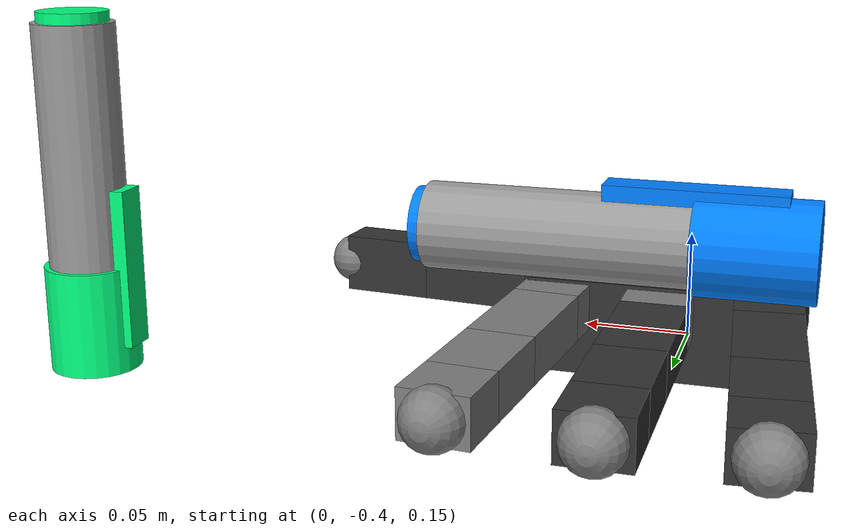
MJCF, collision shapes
<mujoco model="allegro_hand_right">
  <compiler angle="radian"/>
  <option apirate="200" iterations="20" noslip_iterations="20" cone="elliptic"/>
  <size njmax="2000" nconmax="500" nstack="600000" nuser_body="9" nuser_jnt="1" nuser_site="1" nuser_tendon="1"
        nuser_actuator="16" nuser_sensor="1"/>
  <default class="main">
    <default class="collision">
      <geom conaffinity="0" group="4" friction="1 0.5 0.01" margin="0.0005" condim="4"/>
    </default>
    <default class="visual">
      <geom type="mesh" contype="0" conaffinity="0" group="1" material="MatViz" friction="1 0.5 0.01"
            margin="0.0005"/>
    </default>
  </default>
  <asset>
    <material name="MatViz" specular="0.75" shininess="0.1" reflectance="0.5" rgba="0.2 0.2 0.2 1"/>
    <mesh file="meshes/base_link.STL" name="base_link" scale="1 1 1"/>
    <mesh file="meshes/link_0.0.STL" name="link0" scale="1 1 1"/>
    <mesh file="meshes/link_1.0.STL" name="link1" scale="1 1 1"/>
    <mesh file="meshes/link_2.0.STL" name="link2" scale="1 1 1"/>
    <mesh file="meshes/link_3.0.STL" name="link3" scale="1 1 1"/>
    <mesh file="meshes/link_13.0.STL" name="link13" scale="1 1 1"/>
    <mesh file="meshes/link_14.0.STL" name="link14" scale="1 1 1"/>
    <mesh file="meshes/link_15.0.STL" name="link15" scale="1 1 1"/>
    <mesh file="meshes/link_12.0_right.STL" name="link12_right" scale="1 1 1"/>
    <mesh file="meshes/link_3.0_tip.STL" name="link3_tip" scale="1 1 1"/>
    <mesh file="meshes/link_15.0_tip.STL" name="link15_tip" scale="1 1 1"/>
  </asset>
  <worldbody>
    <body name="forearm" pos="0 -0.7 0.2" quat="0.5 -0.5 0.5 0.5">
      <inertial pos="0.001 -0.002 0.29" quat="0.982037 -0.0160006 0 -0.188007" mass="4" diaginertia="0.01 0.01 0.0075"/>
      <site name="S_grasp" pos="0 0 0" type="sphere" size="0.01" rgba="0 0 0 0"/>
      <body name="base_link" pos="0.0098 0.0 0.395" quat="0 0 0 1">
        <joint name="ARRx" pos="0 0 0" axis="1 0 0" range="-0.75 0.75" damping="20" limited="true" margin="0.01"
               armature="0.001" frictionloss="0.001"/>
        <joint name="ARRy" pos="0 0 0" axis="0 1 0" range="-0.75 0.75" damping="20" limited="true" margin="0.01"
               armature="0.001" frictionloss="0.001"/>
        <geom class="collision" size="0.0204 0.0565 0.0475" pos="-0.0093 0 -0.0475" type="box" rgba="0.2 0.2 0.2 1"/>
        <geom class="visual" mesh="base_link" rgba="0.2 0.2 0.2 1"/>
        <body name="link_0.0" pos="0 0.0435 -0.001542" quat="0.999048 -0.0436194 0 0">
          <inertial pos="0 0 0.0082" mass="0.0088396" diaginertia="7.55204e-07 4.8111e-07 8.40064e-07"/>
          <joint name="joint_0.0" pos="0 0 0" axis="0 0 1" limited="true" range="-0.47 0.47" margin="0.01"
                 armature="0.001" damping="0.05" frictionloss="0.001"/>
          <geom class="collision" size="0.0098 0.01375 0.0082" pos="0 0 0.0082" type="box"/>
          <geom class="visual" mesh="link0" rgba="0.2 0.2 0.2 1"/>
          <body name="link_1.0" pos="0 0 0.0164">
            <inertial pos="0 0 0.027" mass="0.029106" diaginertia="8.90704e-06 8.00454e-06 2.76606e-06"/>
            <joint name="joint_1.0" pos="0 0 0" axis="0 1 0" limited="true" range="-0.196 1.61" margin="0.01"
                   armature="0.001" damping="0.05" frictionloss="0.001"/>
            <geom class="collision" size="0.0098 0.01375 0.027" pos="0 0 0.027" type="box"/>
            <geom class="visual" mesh="link1" rgba="0.2 0.2 0.2 1"/>
            <body name="link_2.0" pos="0 0 0.054">
              <inertial pos="0 0 0.0192" mass="0.0206976" diaginertia="3.8477e-06 3.20592e-06 1.96698e-06"/>
              <joint name="joint_2.0" pos="0 0 0" axis="0 1 0" limited="true" range="-0.174 1.709" margin="0.01"
                     armature="0.001" damping="0.05" frictionloss="0.001"/>
              <geom class="collision" size="0.0098 0.01375 0.0192" pos="0 0 0.0192" type="box"/>
              <geom class="visual" mesh="link2" rgba="0.2 0.2 0.2 1"/>
              <body name="link_3.0" pos="0 0 0.0384">
                <inertial pos="0 0 0.0178175" mass="0.0216295"
                          diaginertia="3.03714e-06 2.5909e-06 1.78459e-06"/>
                <joint name="joint_3.0" pos="0 0 0" axis="0 1 0" limited="true" range="-0.227 1.618" margin="0.01"
                       armature="0.001" damping="0.05" frictionloss="0.001"/>
                <geom class="collision" size="0.0098 0.01375 0.01335" pos="0 0 0.01335" type="box"/>
                <geom class="visual" mesh="link3" rgba="0.2 0.2 0.2 1"/>
                <body name="link_3.0_tip" pos="0 0 0.0267">
                  <geom class="collision" size="0.012"/>
                  <geom class="visual" mesh="link3_tip" rgba="0.9 0.9 0.9 1"/>
                </body>
              </body>
            </body>
          </body>
        </body>
        <body name="link_4.0" pos="0 0 0.0007">
          <inertial pos="0 0 0.0082" mass="0.0088396" diaginertia="7.55204e-07 4.8111e-07 8.40064e-07"/>
          <joint name="joint_4.0" pos="0 0 0" axis="0 0 1" limited="true" range="-0.47 0.47" margin="0.01"
                 armature="0.001" damping="0.05" frictionloss="0.001"/>
          <geom class="collision" size="0.0098 0.01375 0.0082" pos="0 0 0.0082" type="box"/>
          <geom class="visual" mesh="link0" rgba="0.2 0.2 0.2 1"/>
          <body name="link_5.0" pos="0 0 0.0164">
            <inertial pos="0 0 0.027" mass="0.029106" diaginertia="8.90704e-06 8.00454e-06 2.76606e-06"/>
            <joint name="joint_5.0" pos="0 0 0" axis="0 1 0" limited="true" range="-0.196 1.61" margin="0.01"
                   armature="0.001" damping="0.05" frictionloss="0.001"/>
            <geom class="collision" size="0.0098 0.01375 0.027" pos="0 0 0.027" type="box" rgba="0.2 0.2 0.2 1"/>
            <geom class="visual" mesh="link1" rgba="0.2 0.2 0.2 1"/>
            <body name="link_6.0" pos="0 0 0.054">
              <inertial pos="0 0 0.0192" mass="0.0206976" diaginertia="3.8477e-06 3.20592e-06 1.96698e-06"/>
              <joint name="joint_6.0" pos="0 0 0" axis="0 1 0" limited="true" range="-0.174 1.709" margin="0.01"
                     armature="0.001" damping="0.05" frictionloss="0.001"/>
              <geom class="collision" size="0.0098 0.01375 0.0192" pos="0 0 0.0192" type="box" rgba="0.2 0.2 0.2 1"/>
              <geom class="visual" mesh="link2" rgba="0.2 0.2 0.2 1"/>
              <body name="link_7.0" pos="0 0 0.0384">
                <inertial pos="0 0 0.0178175" mass="0.0216295"
                          diaginertia="3.03714e-06 2.5909e-06 1.78459e-06"/>
                <joint name="joint_7.0" pos="0 0 0" axis="0 1 0" limited="true" range="-0.227 1.618" margin="0.01"
                       armature="0.001" damping="0.05" frictionloss="0.001"/>
                <geom class="collision" size="0.0098 0.01375 0.01335" pos="0 0 0.01335" type="box"
                      rgba="0.2 0.2 0.2 1"/>
                <geom class="visual" mesh="link3" rgba="0.2 0.2 0.2 1"/>
                <body name="link_7.0_tip" pos="0 0 0.0267">
                  <geom class="collision" size="0.012"/>
                  <geom class="visual" mesh="link3_tip" rgba="0.9 0.9 0.9 1"/>
                </body>
              </body>
            </body>
          </body>
        </body>
        <body name="link_8.0" pos="0 -0.0435 -0.001542" quat="0.999048 0.0436194 0 0">
          <inertial pos="0 0 0.0082" mass="0.0088396" diaginertia="7.55204e-07 4.8111e-07 8.40064e-07"/>
          <joint name="joint_8.0" pos="0 0 0" axis="0 0 1" limited="true" range="-0.47 0.47" margin="0.01"
                 armature="0.001" damping="0.05" frictionloss="0.001"/>
          <geom class="collision" size="0.0098 0.01375 0.0082" pos="0 0 0.0082" type="box" rgba="0.2 0.2 0.2 1"/>
          <geom class="visual" mesh="link0" rgba="0.2 0.2 0.2 1"/>
          <body name="link_9.0" pos="0 0 0.0164">
            <inertial pos="0 0 0.027" mass="0.029106" diaginertia="8.90704e-06 8.00454e-06 2.76606e-06"/>
            <joint name="joint_9.0" pos="0 0 0" axis="0 1 0" limited="true" range="-0.196 1.61" margin="0.01"
                   armature="0.001" damping="0.05" frictionloss="0.001"/>
            <geom class="collision" size="0.0098 0.01375 0.027" pos="0 0 0.027" type="box" rgba="0.2 0.2 0.2 1"/>
            <geom class="visual" mesh="link1" rgba="0.2 0.2 0.2 1"/>
            <body name="link_10.0" pos="0 0 0.054">
              <inertial pos="0 0 0.0192" mass="0.0206976" diaginertia="3.8477e-06 3.20592e-06 1.96698e-06"/>
              <joint name="joint_10.0" pos="0 0 0" axis="0 1 0" limited="true" range="-0.174 1.709" margin="0.01"
                     armature="0.001" damping="0.05" frictionloss="0.001"/>
              <geom class="collision" size="0.0098 0.01375 0.0192" pos="0 0 0.0192" type="box" rgba="0.2 0.2 0.2 1"/>
              <geom class="visual" mesh="link2" rgba="0.2 0.2 0.2 1"/>
              <body name="link_11.0" pos="0 0 0.0384">
                <inertial pos="0 0 0.0178175" mass="0.0216295"
                          diaginertia="3.03714e-06 2.5909e-06 1.78459e-06"/>
                <joint name="joint_11.0" pos="0 0 0" axis="0 1 0" limited="true" range="-0.227 1.618" margin="0.01"
                       armature="0.001" damping="0.05" frictionloss="0.001"/>
                <geom class="collision" size="0.0098 0.01375 0.01335" pos="0 0 0.01335" type="box"
                      rgba="0.2 0.2 0.2 1"/>
                <geom class="visual" mesh="link3" rgba="0.2 0.2 0.2 1"/>
                <body name="link_11.0_tip" pos="0 0 0.0267">
                  <geom class="collision" size="0.012"/>
                  <geom class="visual" mesh="link3_tip" rgba="0.9 0.9 0.9 1"/>
                </body>
              </body>
            </body>
          </body>
        </body>
        <body name="link_12.0" pos="-0.0182 0.019333 -0.045987" quat="0.477714 -0.521334 -0.521334 -0.477714">
          <inertial pos="-0.0179 0.009 0.0145" mass="0.0553826" diaginertia="1.48898e-05 1.54697e-05 1.12502e-05"/>
          <joint name="joint_12.0" pos="0 0 0" axis="-1 0 0" limited="true" range="0.263 1.396" margin="0.01"
                 armature="0.001" damping="0.05" frictionloss="0.001"/>
          <geom class="collision" size="0.0179 0.017 0.02275" pos="-0.0179 0.009 0.0145" type="box"
                rgba="0.2 0.2 0.2 1"/>
          <geom class="visual" mesh="link12_right" rgba="0.2 0.2 0.2 1"/>
          <body name="link_13.0" pos="-0.027 0.005 0.0399">
            <inertial pos="0 0 0.00885" mass="0.0095403" diaginertia="8.50311e-07 5.5449e-07 9.06654e-07"/>
            <joint name="joint_13.0" pos="0 0 0" axis="0 0 1" limited="true" range="-0.105 1.163" margin="0.01"
                   armature="0.001" damping="0.05" frictionloss="0.001"/>
            <geom class="collision" size="0.0098 0.01375 0.00885" pos="0 0 0.00885" type="box" rgba="0.2 0.2 0.2 1"/>
            <geom class="visual" mesh="link13" rgba="0.2 0.2 0.2 1"/>
            <body name="link_14.0" pos="0 0 0.0177">
              <inertial pos="0 0 0.0257" mass="0.0277046" diaginertia="7.8455e-06 6.98645e-06 2.63288e-06"/>
              <joint name="joint_14.0" pos="0 0 0" axis="0 1 0" limited="true" range="-0.189 1.644" margin="0.01"
                     armature="0.001" damping="0.05" frictionloss="0.001"/>
              <geom class="collision" size="0.0098 0.01375 0.0257" pos="0 0 0.0257" type="box" rgba="0.2 0.2 0.2 1"/>
              <geom class="visual" mesh="link14" rgba="0.2 0.2 0.2 1"/>
              <body name="link_15.0" pos="0 0 0.0514">
                <inertial pos="0 0 0.0262465" mass="0.0300379"
                          diaginertia="7.71099e-06 7.00403e-06 2.58367e-06"/>
                <joint name="joint_15.0" pos="0 0 0" axis="0 1 0" limited="true" range="-0.162 1.719" margin="0.01"
                       armature="0.001" damping="0.05" frictionloss="0.001"/>
                <geom class="collision" size="0.0098 0.01375 0.02115" pos="0 0 0.02115" type="box"
                      rgba="0.2 0.2 0.2 1"/>
                <geom class="visual" mesh="link15" rgba="0.2 0.2 0.2 1"/>
                <body name="link_15.0_tip" pos="0 0 0.0423">
                  <geom class="collision" size="0.012"/>
                  <geom class="visual" mesh="link15_tip" rgba="0.9 0.9 0.9 1"/>
                </body>
              </body>
            </body>
          </body>
        </body>
      </body>
    </body>
    <site name="eps_ball" type="sphere" pos="0.0 -0.2 0.25" size="0.075" rgba="0 0 0 0"/>
    <body name="Object" pos="-0.00 -0.2 0.25" user="1001 0 2003 27 0 0 0.06 0 0" euler="0 1.57 0">
      <joint name="OBJTx" pos="0 0 0" axis="1 0 0" type="slide" limited="false" damping="0" margin="0.01"
             armature="0.001" frictionloss="0.001"/>
      <joint name="OBJTy" pos="0 0 0" axis="0 1 0" type="slide" limited="false" damping="0" margin="0.01"
             armature="0.001" frictionloss="0.001"/>
      <joint name="OBJTz" pos="0 0 0" axis="0 0 1" type="slide" limited="false" damping="0" margin="0.01"
             armature="0.001" frictionloss="0.001"/>
      <joint name="OBJRx" pos="0 0 0" axis="1 0 0" limited="false" damping="0" margin="0.01" armature="0.001"
             frictionloss="0.001"/>
      <joint name="OBJRy" pos="0 0 0" axis="0 1 0" limited="false" damping="0" margin="0.01" armature="0.001"
             frictionloss="0.001"/>
      <joint name="OBJRz" pos="0 0 0" axis="0 0 1" limited="false" damping="0" margin="0.01" armature="0.001"
             frictionloss="0.001"/>
      <geom name="pen" type="cylinder" size="0.015 0.065" condim="4" rgba=".6 .6 .6 .6" density="1500"
            friction="1 0.5 0.01" margin="0.0005"/>
      <geom name="top" type="cylinder" size="0.017 0.020" condim="4" pos="0 0 -.0455" rgba="0 .5 1 1" contype="0"
            conaffinity="0"/>
      <geom name="bot" type="cylinder" size="0.013 0.002" pos="0 0 0.067" rgba="0 .5 1 1" contype="0" conaffinity="0"/>
      <geom name="cli" type="box" size="0.004 0.006 0.03" pos="-.015 0 -.0255" rgba="0 .5 1 1" contype="0"
            conaffinity="0"/>

      <site name="object_top" type="sphere" size="0.005" rgba="0.8 0.2 0.2 0" pos="0 0 0.065"/>
      <site name="object_bottom" type="sphere" size="0.005" rgba="0.2 0.8 0.2 0" pos="0 0 -0.065"/>
    </body>

    <body name="target" pos="0.2 -0.2 0.25">
      <site name="target_top" type="sphere" size="0.005" rgba="0.8 0.2 0.2 0" pos="0 0 0.065"/>
      <site name="target_bottom" type="sphere" size="0.005" rgba="0.2 0.8 0.2 0" pos="0 0 -0.065"/>

      <geom name="target" type="cylinder" size="0.015 0.065" condim="4" rgba=".6 .6 .6 .3"/>
      <geom name="t_top" type="cylinder" size="0.017 0.020" condim="4" pos="0 0 -.0455" rgba="0 1 .5 1" contype="0"
            conaffinity="0"/>
      <geom name="t_bot" type="cylinder" size="0.013 0.002" pos="0 0 0.067" rgba="0 1 .5 1" contype="0"
            conaffinity="0"/>
      <geom name="t_cli" type="box" size="0.004 0.006 0.03" pos="-.015 0 -.0255" rgba="0 1 .5 1" contype="0"
            conaffinity="0"/>
    </body>
  </worldbody>
  <tendon>
    <fixed name="T_0r" range="-0.018 0.018" user="1210" limited="true">
      <joint joint="joint_0.0" coef="0.01"/>
    </fixed>
    <fixed name="T_0l" range="-0.018 0.018" user="1211" limited="true">
      <joint joint="joint_0.0" coef="-0.01"/>
    </fixed>
    <fixed name="T_1u" range="-0.007 0.03" user="1208" limited="true">
      <joint joint="joint_1.0" coef="0.01"/>
    </fixed>
    <fixed name="T_1d" range="-0.03 0.007" user="1209" limited="true">
      <joint joint="joint_1.0" coef="-0.01"/>
    </fixed>
    <fixed name="T_2c" range="-0.001 0.001" limited="true">
      <joint joint="joint_3.0" coef="0.00705"/>
      <joint joint="joint_2.0" coef="-0.00805"/>
    </fixed>
    <fixed name="T_2u" range="-0.007 0.03" user="1206" limited="true">
      <joint joint="joint_3.0" coef="0.00705"/>
      <joint joint="joint_2.0" coef="0.00805"/>
    </fixed>
    <fixed name="T_2d" range="-0.03 0.007" user="1207" limited="true">
      <joint joint="joint_3.0" coef="-0.00705"/>
      <joint joint="joint_2.0" coef="-0.00805"/>
    </fixed>
    <fixed name="T_4r" range="-0.018 0.018" user="1210" limited="true">
      <joint joint="joint_4.0" coef="0.01"/>
    </fixed>
    <fixed name="T_4l" range="-0.018 0.018" user="1211" limited="true">
      <joint joint="joint_4.0" coef="-0.01"/>
    </fixed>
    <fixed name="T_5u" range="-0.007 0.03" user="1208" limited="true">
      <joint joint="joint_5.0" coef="0.01"/>
    </fixed>
    <fixed name="T_5d" range="-0.03 0.007" user="1209" limited="true">
      <joint joint="joint_5.0" coef="-0.01"/>
    </fixed>
    <fixed name="T_6c" range="-0.001 0.001" limited="true">
      <joint joint="joint_7.0" coef="0.00705"/>
      <joint joint="joint_6.0" coef="-0.00805"/>
    </fixed>
    <fixed name="T_6u" range="-0.007 0.03" user="1206" limited="true">
      <joint joint="joint_7.0" coef="0.00705"/>
      <joint joint="joint_6.0" coef="0.00805"/>
    </fixed>
    <fixed name="T_6d" range="-0.03 0.007" user="1207" limited="true">
      <joint joint="joint_7.0" coef="-0.00705"/>
      <joint joint="joint_6.0" coef="-0.00805"/>
    </fixed>
    <fixed name="T_8r" range="-0.018 0.018" user="1210" limited="true">
      <joint joint="joint_8.0" coef="0.01"/>
    </fixed>
    <fixed name="T_8l" range="-0.018 0.018" user="1211" limited="true">
      <joint joint="joint_8.0" coef="-0.01"/>
    </fixed>
    <fixed name="T_9u" range="-0.007 0.03" user="1208" limited="true">
      <joint joint="joint_9.0" coef="0.01"/>
    </fixed>
    <fixed name="T_9d" range="-0.03 0.007" user="1209" limited="true">
      <joint joint="joint_9.0" coef="-0.01"/>
    </fixed>
    <fixed name="T_10c" range="-0.001 0.001" limited="true">
      <joint joint="joint_11.0" coef="0.00705"/>
      <joint joint="joint_10.0" coef="-0.00805"/>
    </fixed>
    <fixed name="T_10u" range="-0.007 0.03" user="1206" limited="true">
      <joint joint="joint_11.0" coef="0.00705"/>
      <joint joint="joint_10.0" coef="0.00805"/>
    </fixed>
    <fixed name="T_10d" range="-0.03 0.007" user="1207" limited="true">
      <joint joint="joint_11.0" coef="-0.00705"/>
      <joint joint="joint_10.0" coef="-0.00805"/>
    </fixed>
    <fixed name="T_12r" range="-0.018 0.018" user="1210" limited="true">
      <joint joint="joint_12.0" coef="0.01"/>
    </fixed>
    <fixed name="T_12l" range="-0.018 0.018" user="1211" limited="true">
      <joint joint="joint_12.0" coef="-0.01"/>
    </fixed>
    <fixed name="T_13u" range="-0.007 0.03" user="1208" limited="true">
      <joint joint="joint_13.0" coef="0.01"/>
    </fixed>
    <fixed name="T_13d" range="-0.03 0.007" user="1209" limited="true">
      <joint joint="joint_13.0" coef="-0.01"/>
    </fixed>
    <fixed name="T_14c" range="-0.001 0.001" limited="true">
      <joint joint="joint_15.0" coef="0.00705"/>
      <joint joint="joint_14.0" coef="-0.00805"/>
    </fixed>
    <fixed name="T_14u" range="-0.007 0.03" user="1206" limited="true">
      <joint joint="joint_15.0" coef="0.00705"/>
      <joint joint="joint_14.0" coef="0.00805"/>
    </fixed>
    <fixed name="T_14d" range="-0.03 0.007" user="1207" limited="true">
      <joint joint="joint_15.0" coef="-0.00705"/>
      <joint joint="joint_14.0" coef="-0.00805"/>
    </fixed>
  </tendon>
  <actuator>
    <general biasprm="0 -20 0 0 0 0 0 0 0 0" biastype="affine" ctrllimited="true" ctrlrange="-0.75 0.75"
             gainprm="50 0 0 0 0 0 0 0 0 0" joint="ARRx" name="A_ARRx"/>
    <general biasprm="0 -20 0 0 0 0 0 0 0 0" biastype="affine" ctrllimited="true" ctrlrange="-0.75 0.75"
             gainprm="50 0 0 0 0 0 0 0 0 0" joint="ARRy" name="A_ARRy"/>
    <general biasprm="0 -1 0 0 0 0 0 0 0 0" biastype="affine" ctrllimited="true" ctrlrange="-0.47 0.47"
             joint="joint_0.0" name="A_joint_0.0"/>
    <general biasprm="0 -1 0 0 0 0 0 0 0 0" biastype="affine" ctrllimited="true" ctrlrange="-0.196 1.61"
             joint="joint_1.0" name="A_joint_1.0"/>
    <general biasprm="0 -1 0 0 0 0 0 0 0 0" biastype="affine" ctrllimited="true" ctrlrange="-0.174 1.709"
             joint="joint_2.0" name="A_joint_2.0"/>
    <general biasprm="0 -1 0 0 0 0 0 0 0 0" biastype="affine" ctrllimited="true" ctrlrange="-0.227 1.618"
             joint="joint_3.0" name="A_joint_3.0"/>
    <general biasprm="0 -1 0 0 0 0 0 0 0 0" biastype="affine" ctrllimited="true" ctrlrange="-0.47 0.47"
             joint="joint_4.0" name="A_joint_4.0"/>
    <general biasprm="0 -1 0 0 0 0 0 0 0 0" biastype="affine" ctrllimited="true" ctrlrange="-0.196 1.61"
             joint="joint_5.0" name="A_joint_5.0"/>
    <general biasprm="0 -1 0 0 0 0 0 0 0 0" biastype="affine" ctrllimited="true" ctrlrange="-0.174 1.709"
             joint="joint_6.0" name="A_joint_6.0"/>
    <general biasprm="0 -1 0 0 0 0 0 0 0 0" biastype="affine" ctrllimited="true" ctrlrange="-0.227 1.618"
             joint="joint_7.0" name="A_joint_7.0"/>
    <general biasprm="0 -1 0 0 0 0 0 0 0 0" biastype="affine" ctrllimited="true" ctrlrange="-0.47 0.47"
             joint="joint_8.0" name="A_joint_8.0"/>
    <general biasprm="0 -1 0 0 0 0 0 0 0 0" biastype="affine" ctrllimited="true" ctrlrange="-0.196 1.61"
             joint="joint_9.0" name="A_joint_9.0"/>
    <general biasprm="0 -1 0 0 0 0 0 0 0 0" biastype="affine" ctrllimited="true" ctrlrange="-0.174 1.709"
             joint="joint_10.0" name="A_joint_10.0"/>
    <general biasprm="0 -1 0 0 0 0 0 0 0 0" biastype="affine" ctrllimited="true" ctrlrange="-0.227 1.618"
             joint="joint_11.0" name="A_joint_11.0"/>
    <general biasprm="0 -1 0 0 0 0 0 0 0 0" biastype="affine" ctrllimited="true" ctrlrange="0.263 1.396"
             joint="joint_12.0" name="A_joint_12.0"/>
    <general biasprm="0 -1 0 0 0 0 0 0 0 0" biastype="affine" ctrllimited="true" ctrlrange="-0.105 1.163"
             joint="joint_13.0" name="A_joint_13.0"/>
    <general biasprm="0 -1 0 0 0 0 0 0 0 0" biastype="affine" ctrllimited="true" ctrlrange="-0.189 1.644"
             joint="joint_14.0" name="A_joint_14.0"/>
    <general biasprm="0 -1 0 0 0 0 0 0 0 0" biastype="affine" ctrllimited="true" ctrlrange="-0.162 1.719"
             joint="joint_15.0" name="A_joint_15.0"/>
  </actuator>
</mujoco>
